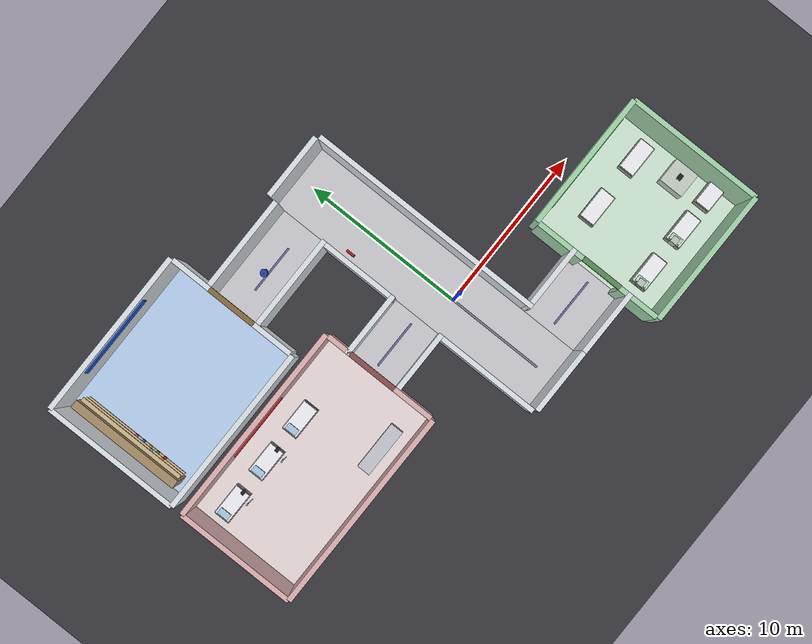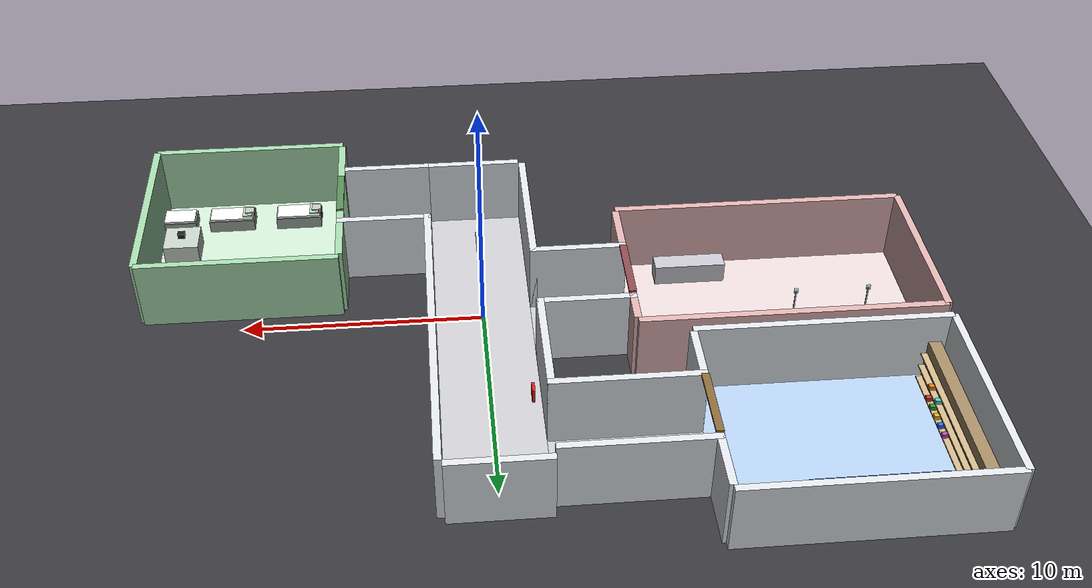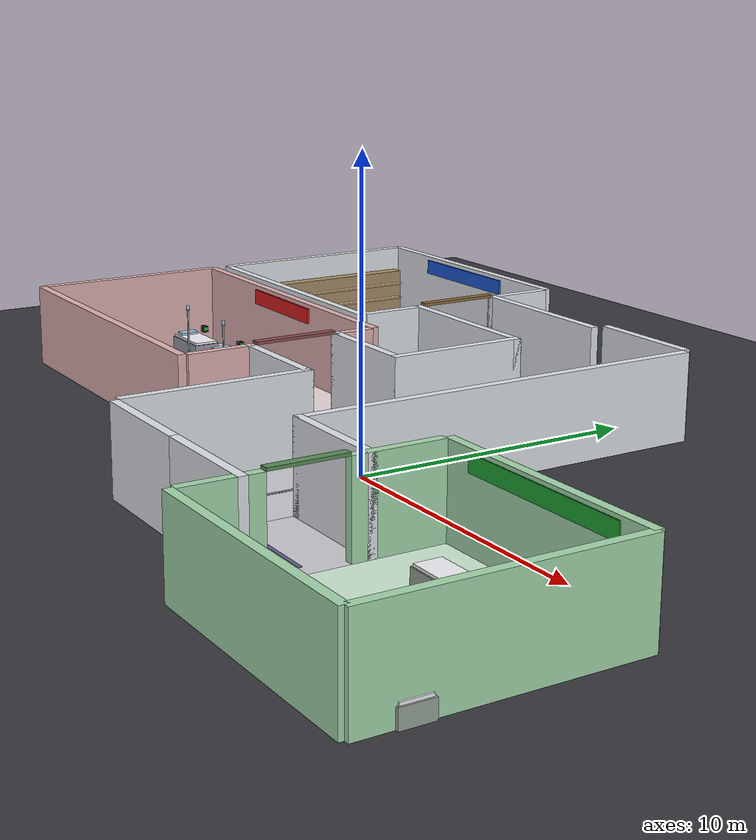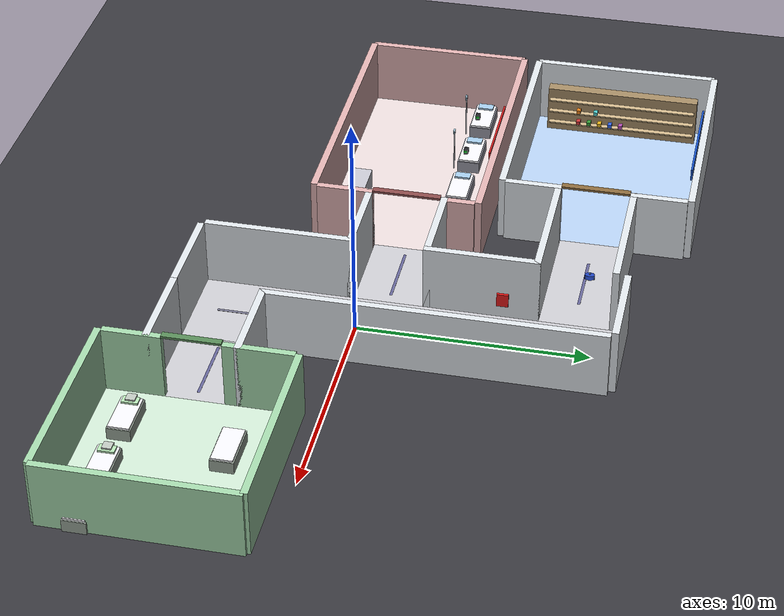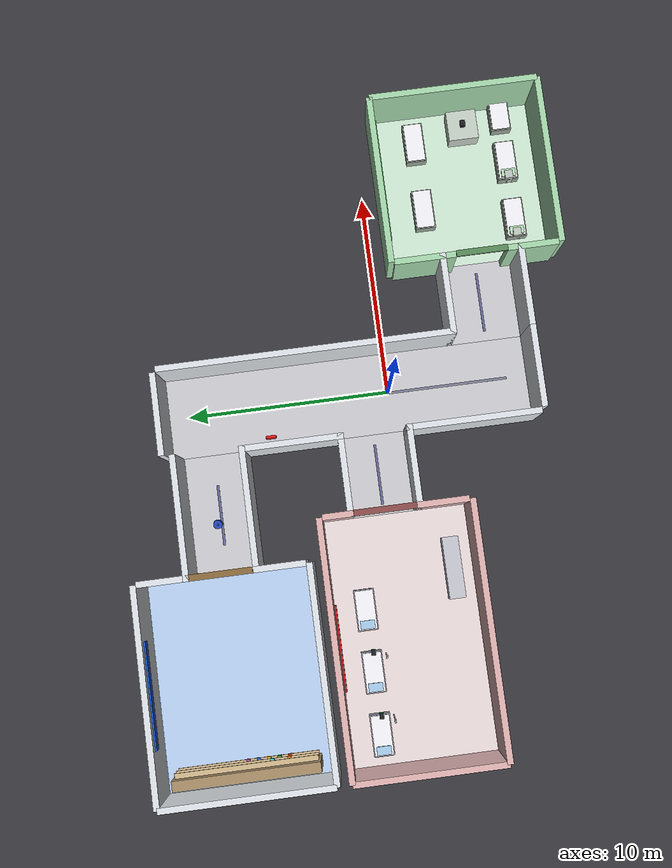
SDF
<sdf version="1.7">
 <world name="hospital_world">
  <physics name="ode" type="ode">
   <max_step_size>0.001</max_step_size>
   <real_time_factor>1</real_time_factor>
   <real_time_update_rate>1000</real_time_update_rate>
  </physics>
  <light name="sun" type="directional">
   <pose>0 4 20 0 -0 0</pose>
   <diffuse>0.9 0.9 0.88 1</diffuse>
   <specular>0.2 0.2 0.18 1</specular>
   <direction>-0.3 0.1 -0.9</direction>
   <attenuation><range>10</range></attenuation>
   <spot><inner_angle>0</inner_angle><outer_angle>0</outer_angle><falloff>0</falloff></spot>
  </light>
  <light name="amb" type="ambient">
   <direction>0 0 -1</direction>
   <attenuation><range>10</range></attenuation>
   <spot><inner_angle>0</inner_angle><outer_angle>0</outer_angle><falloff>0</falloff></spot>
   <color>0.40 0.40 0.42 1</color>
  </light>
  <light name="ph_light" type="point">
   <pose>-13 9 3.5 0 -0 0</pose>
   <diffuse>0.6 0.7 1 1</diffuse>
   <attenuation><range>12</range><linear>0.1</linear></attenuation>
   <direction>0 0 -1</direction>
   <spot><inner_angle>0</inner_angle><outer_angle>0</outer_angle><falloff>0</falloff></spot>
  </light>
  <light name="icu_light" type="point">
   <pose>-12 0.5 3.5 0 -0 0</pose>
   <diffuse>1 0.85 0.85 1</diffuse>
   <attenuation><range>14</range><linear>0.1</linear></attenuation>
   <direction>0 0 -1</direction>
   <spot><inner_angle>0</inner_angle><outer_angle>0</outer_angle><falloff>0</falloff></spot>
  </light>
  <light name="ward_light" type="point">
   <pose>10 -5 3.5 0 -0 0</pose>
   <diffuse>0.75 1 0.75 1</diffuse>
   <attenuation><range>12</range><linear>0.1</linear></attenuation>
   <direction>0 0 -1</direction>
   <spot><inner_angle>0</inner_angle><outer_angle>0</outer_angle><falloff>0</falloff></spot>
  </light>
  <model name="ground">
   <static>1</static>
   <link name="link">
    <collision name="c"><geometry><plane><normal>0 0 1</normal><size>80 60</size></plane></geometry></collision>
    <visual name="v">
     <geometry><plane><normal>0 0 1</normal><size>80 60</size></plane></geometry>
     <material><ambient>0.2 0.2 0.22 1</ambient><diffuse>0.22 0.22 0.24 1</diffuse></material>
    </visual>
   </link>
  </model>
  <model name="ph_floor">
   <static>1</static>
   <pose>-13 9 0.01 0 -0 0</pose>
   <link name="link">
    <visual name="v">
     <geometry><box><size>10 8 0.02</size></box></geometry>
     <material><ambient>0.72 0.82 0.95 1</ambient><diffuse>0.72 0.82 0.95 1</diffuse></material>
    </visual>
   </link>
  </model>
  <model name="ph_wn">
   <static>1</static>
   <pose>-13 13.15 1.5 0 -0 0</pose>
   <link name="link">
    <collision name="c"><geometry><box><size>10.3 0.3 3</size></box></geometry></collision>
    <visual name="v">
     <geometry><box><size>10.3 0.3 3</size></box></geometry>
     <material><ambient>0.88 0.9 0.92 1</ambient><diffuse>0.88 0.9 0.92 1</diffuse></material>
    </visual>
   </link>
  </model>
  <model name="ph_ws">
   <static>1</static>
   <pose>-13 4.85 1.5 0 -0 0</pose>
   <link name="link">
    <collision name="c"><geometry><box><size>10.3 0.3 3</size></box></geometry></collision>
    <visual name="v">
     <geometry><box><size>10.3 0.3 3</size></box></geometry>
     <material><ambient>0.88 0.9 0.92 1</ambient><diffuse>0.88 0.9 0.92 1</diffuse></material>
    </visual>
   </link>
  </model>
  <model name="ph_ww">
   <static>1</static>
   <pose>-18.15 9 1.5 0 -0 0</pose>
   <link name="link">
    <collision name="c"><geometry><box><size>0.3 8.3 3</size></box></geometry></collision>
    <visual name="v">
     <geometry><box><size>0.3 8.3 3</size></box></geometry>
     <material><ambient>0.88 0.9 0.92 1</ambient><diffuse>0.88 0.9 0.92 1</diffuse></material>
    </visual>
   </link>
  </model>
  <model name="ph_we_top">
   <static>1</static>
   <pose>-7.85 11.75 1.5 0 -0 0</pose>
   <link name="link">
    <collision name="c"><geometry><box><size>0.3 2.5 3</size></box></geometry></collision>
    <visual name="v">
     <geometry><box><size>0.3 2.5 3</size></box></geometry>
     <material><ambient>0.88 0.9 0.92 1</ambient><diffuse>0.88 0.9 0.92 1</diffuse></material>
    </visual>
   </link>
  </model>
  <model name="ph_we_bot">
   <static>1</static>
   <pose>-7.85 6.25 1.5 0 -0 0</pose>
   <link name="link">
    <collision name="c"><geometry><box><size>0.3 2.5 3</size></box></geometry></collision>
    <visual name="v">
     <geometry><box><size>0.3 2.5 3</size></box></geometry>
     <material><ambient>0.88 0.9 0.92 1</ambient><diffuse>0.88 0.9 0.92 1</diffuse></material>
    </visual>
   </link>
  </model>
  <model name="ph_door_top">
   <static>1</static>
   <pose>-7.85 9 3.05 0 -0 0</pose>
   <link name="link">
    <visual name="v">
     <geometry><box><size>0.3 3 0.1</size></box></geometry>
     <material><ambient>0.55 0.42 0.24 1</ambient><diffuse>0.55 0.42 0.24 1</diffuse></material>
    </visual>
   </link>
  </model>
  <model name="ph_sign">
   <static>1</static>
   <pose>-13 12.9 2.6 0 -0 0</pose>
   <link name="link">
    <visual name="v">
     <geometry><box><size>5 0.08 0.55</size></box></geometry>
     <material><ambient>0.1 0.35 0.85 1</ambient><diffuse>0.1 0.35 0.85 1</diffuse></material>
    </visual>
   </link>
  </model>
  <model name="ph_shelf_frame">
   <static>1</static>
   <pose>-17.3 9 1.1 0 -0 0</pose>
   <link name="link">
    <collision name="c"><geometry><box><size>0.5 7 2.2</size></box></geometry></collision>
    <visual name="v">
     <geometry><box><size>0.5 7 2.2</size></box></geometry>
     <material><ambient>0.65 0.55 0.4 1</ambient><diffuse>0.65 0.55 0.4 1</diffuse></material>
    </visual>
   </link>
  </model>
  <model name="ph_board1">
   <static>1</static>
   <pose>-17 9 0.5 0 -0 0</pose>
   <link name="link">
    <visual name="v">
     <geometry><box><size>0.4 6.8 0.06</size></box></geometry>
     <material><ambient>0.82 0.72 0.55 1</ambient><diffuse>0.82 0.72 0.55 1</diffuse></material>
    </visual>
   </link>
  </model>
  <model name="ph_board2">
   <static>1</static>
   <pose>-17 9 1.1 0 -0 0</pose>
   <link name="link">
    <visual name="v">
     <geometry><box><size>0.4 6.8 0.06</size></box></geometry>
     <material><ambient>0.82 0.72 0.55 1</ambient><diffuse>0.82 0.72 0.55 1</diffuse></material>
    </visual>
   </link>
  </model>
  <model name="ph_board3">
   <static>1</static>
   <pose>-17 9 1.7 0 -0 0</pose>
   <link name="link">
    <visual name="v">
     <geometry><box><size>0.4 6.8 0.06</size></box></geometry>
     <material><ambient>0.82 0.72 0.55 1</ambient><diffuse>0.82 0.72 0.55 1</diffuse></material>
    </visual>
   </link>
  </model>
  <model name="ph_box1">
   <static>1</static>
   <pose>-16.9 7 0.62 0 -0 0</pose>
   <link name="link">
    <visual name="v">
     <geometry><box><size>0.25 0.18 0.18</size></box></geometry>
     <material><ambient>0.8 0.2 0.2 1</ambient><diffuse>0.8 0.2 0.2 1</diffuse></material>
    </visual>
   </link>
  </model>
  <model name="ph_box2">
   <static>1</static>
   <pose>-16.9 7.5 0.62 0 -0 0</pose>
   <link name="link">
    <visual name="v">
     <geometry><box><size>0.25 0.18 0.18</size></box></geometry>
     <material><ambient>0.2 0.6 0.2 1</ambient><diffuse>0.2 0.6 0.2 1</diffuse></material>
    </visual>
   </link>
  </model>
  <model name="ph_box3">
   <static>1</static>
   <pose>-16.9 8 0.62 0 -0 0</pose>
   <link name="link">
    <visual name="v">
     <geometry><box><size>0.25 0.18 0.18</size></box></geometry>
     <material><ambient>0.9 0.7 0.1 1</ambient><diffuse>0.9 0.7 0.1 1</diffuse></material>
    </visual>
   </link>
  </model>
  <model name="ph_box4">
   <static>1</static>
   <pose>-16.9 8.5 0.62 0 -0 0</pose>
   <link name="link">
    <visual name="v">
     <geometry><box><size>0.25 0.18 0.18</size></box></geometry>
     <material><ambient>0.2 0.4 0.9 1</ambient><diffuse>0.2 0.4 0.9 1</diffuse></material>
    </visual>
   </link>
  </model>
  <model name="ph_box5">
   <static>1</static>
   <pose>-16.9 9 0.62 0 -0 0</pose>
   <link name="link">
    <visual name="v">
     <geometry><box><size>0.25 0.18 0.18</size></box></geometry>
     <material><ambient>0.7 0.3 0.7 1</ambient><diffuse>0.7 0.3 0.7 1</diffuse></material>
    </visual>
   </link>
  </model>
  <model name="ph_box6">
   <static>1</static>
   <pose>-16.9 7 1.22 0 -0 0</pose>
   <link name="link">
    <visual name="v">
     <geometry><box><size>0.25 0.18 0.18</size></box></geometry>
     <material><ambient>0.9 0.5 0.1 1</ambient><diffuse>0.9 0.5 0.1 1</diffuse></material>
    </visual>
   </link>
  </model>
  <model name="ph_box7">
   <static>1</static>
   <pose>-16.9 7.8 1.22 0 -0 0</pose>
   <link name="link">
    <visual name="v">
     <geometry><box><size>0.25 0.18 0.18</size></box></geometry>
     <material><ambient>0.3 0.8 0.8 1</ambient><diffuse>0.3 0.8 0.8 1</diffuse></material>
    </visual>
   </link>
  </model>
  <model name="phc_floor">
   <static>1</static>
   <pose>-5 9 0.01 0 -0 0</pose>
   <link name="link">
    <visual name="v">
     <geometry><box><size>6 3 0.02</size></box></geometry>
     <material><ambient>0.8 0.8 0.82 1</ambient><diffuse>0.8 0.8 0.82 1</diffuse></material>
    </visual>
   </link>
  </model>
  <model name="phc_wn">
   <static>1</static>
   <pose>-5 10.65 1.5 0 -0 0</pose>
   <link name="link">
    <collision name="c"><geometry><box><size>6 0.3 3</size></box></geometry></collision>
    <visual name="v">
     <geometry><box><size>6 0.3 3</size></box></geometry>
     <material><ambient>0.88 0.9 0.92 1</ambient><diffuse>0.88 0.9 0.92 1</diffuse></material>
    </visual>
   </link>
  </model>
  <model name="phc_ws">
   <static>1</static>
   <pose>-5 7.35 1.5 0 -0 0</pose>
   <link name="link">
    <collision name="c"><geometry><box><size>6 0.3 3</size></box></geometry></collision>
    <visual name="v">
     <geometry><box><size>6 0.3 3</size></box></geometry>
     <material><ambient>0.88 0.9 0.92 1</ambient><diffuse>0.88 0.9 0.92 1</diffuse></material>
    </visual>
   </link>
  </model>
  <model name="phc_arrow">
   <static>1</static>
   <pose>-5 9 0.025 0 -0 0</pose>
   <link name="link">
    <visual name="v">
     <geometry><box><size>3 0.12 0.01</size></box></geometry>
     <material><ambient>0.4 0.4 0.6 1</ambient><diffuse>0.4 0.4 0.6 1</diffuse></material>
    </visual>
   </link>
  </model>
  <model name="icu_floor">
   <static>1</static>
   <pose>-12 0.5 0.01 0 -0 0</pose>
   <link name="link">
    <visual name="v">
     <geometry><box><size>12 7 0.02</size></box></geometry>
     <material><ambient>0.92 0.86 0.86 1</ambient><diffuse>0.92 0.86 0.86 1</diffuse></material>
    </visual>
   </link>
  </model>
  <model name="icu_wn">
   <static>1</static>
   <pose>-12 4.15 1.5 0 -0 0</pose>
   <link name="link">
    <collision name="c"><geometry><box><size>12.3 0.3 3</size></box></geometry></collision>
    <visual name="v">
     <geometry><box><size>12.3 0.3 3</size></box></geometry>
     <material><ambient>0.88 0.7 0.7 1</ambient><diffuse>0.88 0.7 0.7 1</diffuse></material>
    </visual>
   </link>
  </model>
  <model name="icu_ws">
   <static>1</static>
   <pose>-12 -3.15 1.5 0 -0 0</pose>
   <link name="link">
    <collision name="c"><geometry><box><size>12.3 0.3 3</size></box></geometry></collision>
    <visual name="v">
     <geometry><box><size>12.3 0.3 3</size></box></geometry>
     <material><ambient>0.88 0.7 0.7 1</ambient><diffuse>0.88 0.7 0.7 1</diffuse></material>
    </visual>
   </link>
  </model>
  <model name="icu_ww">
   <static>1</static>
   <pose>-18.15 0.5 1.5 0 -0 0</pose>
   <link name="link">
    <collision name="c"><geometry><box><size>0.3 7.3 3</size></box></geometry></collision>
    <visual name="v">
     <geometry><box><size>0.3 7.3 3</size></box></geometry>
     <material><ambient>0.88 0.7 0.7 1</ambient><diffuse>0.88 0.7 0.7 1</diffuse></material>
    </visual>
   </link>
  </model>
  <model name="icu_we_top">
   <static>1</static>
   <pose>-5.85 3.25 1.5 0 -0 0</pose>
   <link name="link">
    <collision name="c"><geometry><box><size>0.3 1.5 3</size></box></geometry></collision>
    <visual name="v">
     <geometry><box><size>0.3 1.5 3</size></box></geometry>
     <material><ambient>0.88 0.7 0.7 1</ambient><diffuse>0.88 0.7 0.7 1</diffuse></material>
    </visual>
   </link>
  </model>
  <model name="icu_we_bot">
   <static>1</static>
   <pose>-5.85 -1.75 1.5 0 -0 0</pose>
   <link name="link">
    <collision name="c"><geometry><box><size>0.3 2.5 3</size></box></geometry></collision>
    <visual name="v">
     <geometry><box><size>0.3 2.5 3</size></box></geometry>
     <material><ambient>0.88 0.7 0.7 1</ambient><diffuse>0.88 0.7 0.7 1</diffuse></material>
    </visual>
   </link>
  </model>
  <model name="icu_door_top">
   <static>1</static>
   <pose>-5.85 1 3.05 0 -0 0</pose>
   <link name="link">
    <visual name="v">
     <geometry><box><size>0.3 3 0.1</size></box></geometry>
     <material><ambient>0.55 0.3 0.3 1</ambient><diffuse>0.55 0.3 0.3 1</diffuse></material>
    </visual>
   </link>
  </model>
  <model name="icu_sign">
   <static>1</static>
   <pose>-12 3.9 2.6 0 -0 0</pose>
   <link name="link">
    <visual name="v">
     <geometry><box><size>4 0.08 0.55</size></box></geometry>
     <material><ambient>0.85 0.12 0.12 1</ambient><diffuse>0.85 0.12 0.12 1</diffuse></material>
    </visual>
   </link>
  </model>
  <model name="icu_bf1">
   <static>1</static>
   <pose>-16.5 2.5 0.28 0 -0 0</pose>
   <link name="link">
    <collision name="c"><geometry><box><size>2 1 0.55</size></box></geometry></collision>
    <visual name="v">
     <geometry><box><size>2 1 0.55</size></box></geometry>
     <material><ambient>0.6 0.6 0.65 1</ambient><diffuse>0.6 0.6 0.65 1</diffuse></material>
    </visual>
   </link>
  </model>
  <model name="icu_bm1">
   <static>1</static>
   <pose>-16.5 2.5 0.58 0 -0 0</pose>
   <link name="link">
    <visual name="v">
     <geometry><box><size>1.9 0.9 0.12</size></box></geometry>
     <material><ambient>0.96 0.96 0.98 1</ambient><diffuse>0.96 0.96 0.98 1</diffuse></material>
    </visual>
   </link>
  </model>
  <model name="icu_bp1">
   <static>1</static>
   <pose>-17.2 2.5 0.68 0 -0 0</pose>
   <link name="link">
    <visual name="v">
     <geometry><box><size>0.4 0.7 0.1</size></box></geometry>
     <material><ambient>0.65 0.8 0.92 1</ambient><diffuse>0.65 0.8 0.92 1</diffuse></material>
    </visual>
   </link>
  </model>
  <model name="icu_bf2">
   <static>1</static>
   <pose>-13.5 2.5 0.28 0 -0 0</pose>
   <link name="link">
    <collision name="c"><geometry><box><size>2 1 0.55</size></box></geometry></collision>
    <visual name="v">
     <geometry><box><size>2 1 0.55</size></box></geometry>
     <material><ambient>0.6 0.6 0.65 1</ambient><diffuse>0.6 0.6 0.65 1</diffuse></material>
    </visual>
   </link>
  </model>
  <model name="icu_bm2">
   <static>1</static>
   <pose>-13.5 2.5 0.58 0 -0 0</pose>
   <link name="link">
    <visual name="v">
     <geometry><box><size>1.9 0.9 0.12</size></box></geometry>
     <material><ambient>0.96 0.96 0.98 1</ambient><diffuse>0.96 0.96 0.98 1</diffuse></material>
    </visual>
   </link>
  </model>
  <model name="icu_bp2">
   <static>1</static>
   <pose>-14.2 2.5 0.68 0 -0 0</pose>
   <link name="link">
    <visual name="v">
     <geometry><box><size>0.4 0.7 0.1</size></box></geometry>
     <material><ambient>0.65 0.8 0.92 1</ambient><diffuse>0.65 0.8 0.92 1</diffuse></material>
    </visual>
   </link>
  </model>
  <model name="icu_bf3">
   <static>1</static>
   <pose>-10.5 2.5 0.28 0 -0 0</pose>
   <link name="link">
    <collision name="c"><geometry><box><size>2 1 0.55</size></box></geometry></collision>
    <visual name="v">
     <geometry><box><size>2 1 0.55</size></box></geometry>
     <material><ambient>0.6 0.6 0.65 1</ambient><diffuse>0.6 0.6 0.65 1</diffuse></material>
    </visual>
   </link>
  </model>
  <model name="icu_bm3">
   <static>1</static>
   <pose>-10.5 2.5 0.58 0 -0 0</pose>
   <link name="link">
    <visual name="v">
     <geometry><box><size>1.9 0.9 0.12</size></box></geometry>
     <material><ambient>0.96 0.96 0.98 1</ambient><diffuse>0.96 0.96 0.98 1</diffuse></material>
    </visual>
   </link>
  </model>
  <model name="icu_bp3">
   <static>1</static>
   <pose>-11.2 2.5 0.68 0 -0 0</pose>
   <link name="link">
    <visual name="v">
     <geometry><box><size>0.4 0.7 0.1</size></box></geometry>
     <material><ambient>0.65 0.8 0.92 1</ambient><diffuse>0.65 0.8 0.92 1</diffuse></material>
    </visual>
   </link>
  </model>
  <model name="icu_iv1">
   <static>1</static>
   <pose>-15.7 1.8 1 0 -0 0</pose>
   <link name="link">
    <visual name="v">
     <geometry><box><size>0.05 0.05 2</size></box></geometry>
     <material><ambient>0.75 0.75 0.78 1</ambient><diffuse>0.75 0.75 0.78 1</diffuse></material>
    </visual>
   </link>
  </model>
  <model name="icu_iv1_bag">
   <static>1</static>
   <pose>-15.7 1.8 2.05 0 -0 0</pose>
   <link name="link">
    <visual name="v">
     <geometry><box><size>0.15 0.08 0.2</size></box></geometry>
     <material><ambient>0.7 0.9 1 0.8</ambient><diffuse>0.7 0.9 1 0.8</diffuse></material>
    </visual>
   </link>
  </model>
  <model name="icu_iv2">
   <static>1</static>
   <pose>-12.7 1.8 1 0 -0 0</pose>
   <link name="link">
    <visual name="v">
     <geometry><box><size>0.05 0.05 2</size></box></geometry>
     <material><ambient>0.75 0.75 0.78 1</ambient><diffuse>0.75 0.75 0.78 1</diffuse></material>
    </visual>
   </link>
  </model>
  <model name="icu_iv2_bag">
   <static>1</static>
   <pose>-12.7 1.8 2.05 0 -0 0</pose>
   <link name="link">
    <visual name="v">
     <geometry><box><size>0.15 0.08 0.2</size></box></geometry>
     <material><ambient>0.7 0.9 1 0.8</ambient><diffuse>0.7 0.9 1 0.8</diffuse></material>
    </visual>
   </link>
  </model>
  <model name="icu_mon1">
   <static>1</static>
   <pose>-15.5 2.4 1.2 0 -0 0</pose>
   <link name="link">
    <visual name="v">
     <geometry><box><size>0.28 0.2 0.22</size></box></geometry>
     <material><ambient>0.12 0.12 0.14 1</ambient><diffuse>0.12 0.12 0.14 1</diffuse></material>
    </visual>
   </link>
  </model>
  <model name="icu_mon1_scr">
   <static>1</static>
   <pose>-15.36 2.4 1.22 0 -0 0</pose>
   <link name="link">
    <visual name="v">
     <geometry><box><size>0.02 0.16 0.14</size></box></geometry>
     <material><ambient>0.1 0.8 0.2 1</ambient><diffuse>0.1 0.8 0.2 1</diffuse></material>
    </visual>
   </link>
  </model>
  <model name="icu_mon2">
   <static>1</static>
   <pose>-12.5 2.4 1.2 0 -0 0</pose>
   <link name="link">
    <visual name="v">
     <geometry><box><size>0.28 0.2 0.22</size></box></geometry>
     <material><ambient>0.12 0.12 0.14 1</ambient><diffuse>0.12 0.12 0.14 1</diffuse></material>
    </visual>
   </link>
  </model>
  <model name="icu_mon2_scr">
   <static>1</static>
   <pose>-12.36 2.4 1.22 0 -0 0</pose>
   <link name="link">
    <visual name="v">
     <geometry><box><size>0.02 0.16 0.14</size></box></geometry>
     <material><ambient>0.1 0.8 0.2 1</ambient><diffuse>0.1 0.8 0.2 1</diffuse></material>
    </visual>
   </link>
  </model>
  <model name="icu_ns">
   <static>1</static>
   <pose>-9 -2 0.45 0 -0 0</pose>
   <link name="link">
    <collision name="c"><geometry><box><size>3 0.8 0.9</size></box></geometry></collision>
    <visual name="v">
     <geometry><box><size>3 0.8 0.9</size></box></geometry>
     <material><ambient>0.78 0.78 0.82 1</ambient><diffuse>0.78 0.78 0.82 1</diffuse></material>
    </visual>
   </link>
  </model>
  <model name="icuc_floor">
   <static>1</static>
   <pose>-4 1 0.01 0 -0 0</pose>
   <link name="link">
    <visual name="v">
     <geometry><box><size>4 3 0.02</size></box></geometry>
     <material><ambient>0.8 0.8 0.82 1</ambient><diffuse>0.8 0.8 0.82 1</diffuse></material>
    </visual>
   </link>
  </model>
  <model name="icuc_wn">
   <static>1</static>
   <pose>-4 2.65 1.5 0 -0 0</pose>
   <link name="link">
    <collision name="c"><geometry><box><size>4 0.3 3</size></box></geometry></collision>
    <visual name="v">
     <geometry><box><size>4 0.3 3</size></box></geometry>
     <material><ambient>0.88 0.9 0.92 1</ambient><diffuse>0.88 0.9 0.92 1</diffuse></material>
    </visual>
   </link>
  </model>
  <model name="icuc_ws">
   <static>1</static>
   <pose>-4 -0.65 1.5 0 -0 0</pose>
   <link name="link">
    <collision name="c"><geometry><box><size>4 0.3 3</size></box></geometry></collision>
    <visual name="v">
     <geometry><box><size>4 0.3 3</size></box></geometry>
     <material><ambient>0.88 0.9 0.92 1</ambient><diffuse>0.88 0.9 0.92 1</diffuse></material>
    </visual>
   </link>
  </model>
  <model name="icuc_arrow">
   <static>1</static>
   <pose>-4 1 0.025 0 -0 0</pose>
   <link name="link">
    <visual name="v">
     <geometry><box><size>3 0.12 0.01</size></box></geometry>
     <material><ambient>0.4 0.4 0.6 1</ambient><diffuse>0.4 0.4 0.6 1</diffuse></material>
    </visual>
   </link>
  </model>
  <model name="vm_floor">
   <static>1</static>
   <pose>0 2 0.01 0 -0 0</pose>
   <link name="link">
    <visual name="v">
     <geometry><box><size>4 18 0.02</size></box></geometry>
     <material><ambient>0.8 0.8 0.82 1</ambient><diffuse>0.8 0.8 0.82 1</diffuse></material>
    </visual>
   </link>
  </model>
  <model name="vm_wn">
   <static>1</static>
   <pose>0 11.15 1.5 0 -0 0</pose>
   <link name="link">
    <collision name="c"><geometry><box><size>4 0.3 3</size></box></geometry></collision>
    <visual name="v">
     <geometry><box><size>4 0.3 3</size></box></geometry>
     <material><ambient>0.88 0.9 0.92 1</ambient><diffuse>0.88 0.9 0.92 1</diffuse></material>
    </visual>
   </link>
  </model>
  <model name="vm_ws">
   <static>1</static>
   <pose>0 -7.15 1.5 0 -0 0</pose>
   <link name="link">
    <collision name="c"><geometry><box><size>4 0.3 3</size></box></geometry></collision>
    <visual name="v">
     <geometry><box><size>4 0.3 3</size></box></geometry>
     <material><ambient>0.88 0.9 0.92 1</ambient><diffuse>0.88 0.9 0.92 1</diffuse></material>
    </visual>
   </link>
  </model>
  <model name="vm_ww_mid">
   <static>1</static>
   <pose>-2.15 5 1.5 0 -0 0</pose>
   <link name="link">
    <collision name="c"><geometry><box><size>0.3 5 3</size></box></geometry></collision>
    <visual name="v">
     <geometry><box><size>0.3 5 3</size></box></geometry>
     <material><ambient>0.88 0.9 0.92 1</ambient><diffuse>0.88 0.9 0.92 1</diffuse></material>
    </visual>
   </link>
  </model>
  <model name="vm_ww_bot">
   <static>1</static>
   <pose>-2.15 -3.75 1.5 0 -0 0</pose>
   <link name="link">
    <collision name="c"><geometry><box><size>0.3 6.5 3</size></box></geometry></collision>
    <visual name="v">
     <geometry><box><size>0.3 6.5 3</size></box></geometry>
     <material><ambient>0.88 0.9 0.92 1</ambient><diffuse>0.88 0.9 0.92 1</diffuse></material>
    </visual>
   </link>
  </model>
  <model name="vm_we_top">
   <static>1</static>
   <pose>2.15 3.75 1.5 0 -0 0</pose>
   <link name="link">
    <collision name="c"><geometry><box><size>0.3 14.5 3</size></box></geometry></collision>
    <visual name="v">
     <geometry><box><size>0.3 14.5 3</size></box></geometry>
     <material><ambient>0.88 0.9 0.92 1</ambient><diffuse>0.88 0.9 0.92 1</diffuse></material>
    </visual>
   </link>
  </model>
  <model name="vm_line">
   <static>1</static>
   <pose>0 2 0.025 0 -0 1.5708</pose>
   <link name="link">
    <visual name="v">
     <geometry><box><size>16 0.12 0.01</size></box></geometry>
     <material><ambient>0.5 0.5 0.6 1</ambient><diffuse>0.5 0.5 0.6 1</diffuse></material>
    </visual>
   </link>
  </model>
  <model name="vm_emerg">
   <static>1</static>
   <pose>-1.6 6 1.2 0 -0 0</pose>
   <link name="link">
    <visual name="v">
     <geometry><box><size>0.12 0.5 0.6</size></box></geometry>
     <material><ambient>0.9 0.1 0.1 1</ambient><diffuse>0.9 0.1 0.1 1</diffuse></material>
    </visual>
   </link>
  </model>
  <model name="wc_floor">
   <static>1</static>
   <pose>4 -5.25 0.01 0 -0 0</pose>
   <link name="link">
    <visual name="v">
     <geometry><box><size>4 3.5 0.02</size></box></geometry>
     <material><ambient>0.8 0.8 0.82 1</ambient><diffuse>0.8 0.8 0.82 1</diffuse></material>
    </visual>
   </link>
  </model>
  <model name="wc_wn">
   <static>1</static>
   <pose>4 -3.35 1.5 0 -0 0</pose>
   <link name="link">
    <collision name="c"><geometry><box><size>4 0.3 3</size></box></geometry></collision>
    <visual name="v">
     <geometry><box><size>4 0.3 3</size></box></geometry>
     <material><ambient>0.88 0.9 0.92 1</ambient><diffuse>0.88 0.9 0.92 1</diffuse></material>
    </visual>
   </link>
  </model>
  <model name="wc_ws">
   <static>1</static>
   <pose>4 -7.15 1.5 0 -0 0</pose>
   <link name="link">
    <collision name="c"><geometry><box><size>4 0.3 3</size></box></geometry></collision>
    <visual name="v">
     <geometry><box><size>4 0.3 3</size></box></geometry>
     <material><ambient>0.88 0.9 0.92 1</ambient><diffuse>0.88 0.9 0.92 1</diffuse></material>
    </visual>
   </link>
  </model>
  <model name="wc_arrow">
   <static>1</static>
   <pose>4 -5.25 0.025 0 -0 0</pose>
   <link name="link">
    <visual name="v">
     <geometry><box><size>3 0.12 0.01</size></box></geometry>
     <material><ambient>0.4 0.4 0.6 1</ambient><diffuse>0.4 0.4 0.6 1</diffuse></material>
    </visual>
   </link>
  </model>
  <model name="gw_floor">
   <static>1</static>
   <pose>10 -5 0.01 0 -0 0</pose>
   <link name="link">
    <visual name="v">
     <geometry><box><size>8 8 0.02</size></box></geometry>
     <material><ambient>0.82 0.92 0.84 1</ambient><diffuse>0.82 0.92 0.84 1</diffuse></material>
    </visual>
   </link>
  </model>
  <model name="gw_wn">
   <static>1</static>
   <pose>10 -0.85 1.5 0 -0 0</pose>
   <link name="link">
    <collision name="c"><geometry><box><size>8.3 0.3 3</size></box></geometry></collision>
    <visual name="v">
     <geometry><box><size>8.3 0.3 3</size></box></geometry>
     <material><ambient>0.65 0.85 0.68 1</ambient><diffuse>0.65 0.85 0.68 1</diffuse></material>
    </visual>
   </link>
  </model>
  <model name="gw_ws">
   <static>1</static>
   <pose>10 -9.15 1.5 0 -0 0</pose>
   <link name="link">
    <collision name="c"><geometry><box><size>8.3 0.3 3</size></box></geometry></collision>
    <visual name="v">
     <geometry><box><size>8.3 0.3 3</size></box></geometry>
     <material><ambient>0.65 0.85 0.68 1</ambient><diffuse>0.65 0.85 0.68 1</diffuse></material>
    </visual>
   </link>
  </model>
  <model name="gw_we">
   <static>1</static>
   <pose>14.15 -5 1.5 0 -0 0</pose>
   <link name="link">
    <collision name="c"><geometry><box><size>0.3 8.3 3</size></box></geometry></collision>
    <visual name="v">
     <geometry><box><size>0.3 8.3 3</size></box></geometry>
     <material><ambient>0.65 0.85 0.68 1</ambient><diffuse>0.65 0.85 0.68 1</diffuse></material>
    </visual>
   </link>
  </model>
  <model name="gw_ww_top">
   <static>1</static>
   <pose>5.85 -2.5 1.5 0 -0 0</pose>
   <link name="link">
    <collision name="c"><geometry><box><size>0.3 3 3</size></box></geometry></collision>
    <visual name="v">
     <geometry><box><size>0.3 3 3</size></box></geometry>
     <material><ambient>0.65 0.85 0.68 1</ambient><diffuse>0.65 0.85 0.68 1</diffuse></material>
    </visual>
   </link>
  </model>
  <model name="gw_ww_bot">
   <static>1</static>
   <pose>5.85 -7.75 1.5 0 -0 0</pose>
   <link name="link">
    <collision name="c"><geometry><box><size>0.3 2.5 3</size></box></geometry></collision>
    <visual name="v">
     <geometry><box><size>0.3 2.5 3</size></box></geometry>
     <material><ambient>0.65 0.85 0.68 1</ambient><diffuse>0.65 0.85 0.68 1</diffuse></material>
    </visual>
   </link>
  </model>
  <model name="gw_door_top">
   <static>1</static>
   <pose>5.85 -5.25 3.05 0 -0 0</pose>
   <link name="link">
    <visual name="v">
     <geometry><box><size>0.3 2.5 0.1</size></box></geometry>
     <material><ambient>0.35 0.55 0.35 1</ambient><diffuse>0.35 0.55 0.35 1</diffuse></material>
    </visual>
   </link>
  </model>
  <model name="gw_sign">
   <static>1</static>
   <pose>10 -1 2.6 0 -0 0</pose>
   <link name="link">
    <visual name="v">
     <geometry><box><size>6 0.08 0.55</size></box></geometry>
     <material><ambient>0.12 0.65 0.2 1</ambient><diffuse>0.12 0.65 0.2 1</diffuse></material>
    </visual>
   </link>
  </model>
  <model name="gw_bf1">
   <static>1</static>
   <pose>8 -7.5 0.28 0 -0 0</pose>
   <link name="link">
    <collision name="c"><geometry><box><size>2 1 0.55</size></box></geometry></collision>
    <visual name="v">
     <geometry><box><size>2 1 0.55</size></box></geometry>
     <material><ambient>0.6 0.65 0.6 1</ambient><diffuse>0.6 0.65 0.6 1</diffuse></material>
    </visual>
   </link>
  </model>
  <model name="gw_bm1">
   <static>1</static>
   <pose>8 -7.5 0.58 0 -0 0</pose>
   <link name="link">
    <visual name="v">
     <geometry><box><size>1.9 0.9 0.12</size></box></geometry>
     <material><ambient>0.96 0.96 0.98 1</ambient><diffuse>0.96 0.96 0.98 1</diffuse></material>
    </visual>
   </link>
  </model>
  <model name="gw_bpil1">
   <static>1</static>
   <pose>7.3 -7.5 0.68 0 -0 0</pose>
   <link name="link">
    <visual name="v">
     <geometry><box><size>0.4 0.7 0.1</size></box></geometry>
     <material><ambient>0.72 0.9 0.72 1</ambient><diffuse>0.72 0.9 0.72 1</diffuse></material>
    </visual>
   </link>
  </model>
  <model name="gw_bf2">
   <static>1</static>
   <pose>11 -7.5 0.28 0 -0 0</pose>
   <link name="link">
    <collision name="c"><geometry><box><size>2 1 0.55</size></box></geometry></collision>
    <visual name="v">
     <geometry><box><size>2 1 0.55</size></box></geometry>
     <material><ambient>0.6 0.65 0.6 1</ambient><diffuse>0.6 0.65 0.6 1</diffuse></material>
    </visual>
   </link>
  </model>
  <model name="gw_bm2">
   <static>1</static>
   <pose>11 -7.5 0.58 0 -0 0</pose>
   <link name="link">
    <visual name="v">
     <geometry><box><size>1.9 0.9 0.12</size></box></geometry>
     <material><ambient>0.96 0.96 0.98 1</ambient><diffuse>0.96 0.96 0.98 1</diffuse></material>
    </visual>
   </link>
  </model>
  <model name="gw_bpil2">
   <static>1</static>
   <pose>10.3 -7.5 0.68 0 -0 0</pose>
   <link name="link">
    <visual name="v">
     <geometry><box><size>0.4 0.7 0.1</size></box></geometry>
     <material><ambient>0.72 0.9 0.72 1</ambient><diffuse>0.72 0.9 0.72 1</diffuse></material>
    </visual>
   </link>
  </model>
  <model name="gw_bf3">
   <static>1</static>
   <pose>13.5 -7.5 0.28 0 -0 0</pose>
   <link name="link">
    <collision name="c"><geometry><box><size>1.8 1 0.55</size></box></geometry></collision>
    <visual name="v">
     <geometry><box><size>1.8 1 0.55</size></box></geometry>
     <material><ambient>0.6 0.65 0.6 1</ambient><diffuse>0.6 0.65 0.6 1</diffuse></material>
    </visual>
   </link>
  </model>
  <model name="gw_bm3">
   <static>1</static>
   <pose>13.5 -7.5 0.58 0 -0 0</pose>
   <link name="link">
    <visual name="v">
     <geometry><box><size>1.7 0.9 0.12</size></box></geometry>
     <material><ambient>0.96 0.96 0.98 1</ambient><diffuse>0.96 0.96 0.98 1</diffuse></material>
    </visual>
   </link>
  </model>
  <model name="gw_bf4">
   <static>1</static>
   <pose>9 -3 0.28 0 -0 0</pose>
   <link name="link">
    <collision name="c"><geometry><box><size>2 1 0.55</size></box></geometry></collision>
    <visual name="v">
     <geometry><box><size>2 1 0.55</size></box></geometry>
     <material><ambient>0.6 0.65 0.6 1</ambient><diffuse>0.6 0.65 0.6 1</diffuse></material>
    </visual>
   </link>
  </model>
  <model name="gw_bm4">
   <static>1</static>
   <pose>9 -3 0.58 0 -0 0</pose>
   <link name="link">
    <visual name="v">
     <geometry><box><size>1.9 0.9 0.12</size></box></geometry>
     <material><ambient>0.96 0.96 0.98 1</ambient><diffuse>0.96 0.96 0.98 1</diffuse></material>
    </visual>
   </link>
  </model>
  <model name="gw_bf5">
   <static>1</static>
   <pose>12.5 -3 0.28 0 -0 0</pose>
   <link name="link">
    <collision name="c"><geometry><box><size>2 1 0.55</size></box></geometry></collision>
    <visual name="v">
     <geometry><box><size>2 1 0.55</size></box></geometry>
     <material><ambient>0.6 0.65 0.6 1</ambient><diffuse>0.6 0.65 0.6 1</diffuse></material>
    </visual>
   </link>
  </model>
  <model name="gw_bm5">
   <static>1</static>
   <pose>12.5 -3 0.58 0 -0 0</pose>
   <link name="link">
    <visual name="v">
     <geometry><box><size>1.9 0.9 0.12</size></box></geometry>
     <material><ambient>0.96 0.96 0.98 1</ambient><diffuse>0.96 0.96 0.98 1</diffuse></material>
    </visual>
   </link>
  </model>
  <model name="gw_bt1">
   <static>1</static>
   <pose>7.2 -7.5 0.4 0 -0 0</pose>
   <link name="link">
    <visual name="v">
     <geometry><box><size>0.4 0.4 0.8</size></box></geometry>
     <material><ambient>0.75 0.78 0.75 1</ambient><diffuse>0.75 0.78 0.75 1</diffuse></material>
    </visual>
   </link>
  </model>
  <model name="gw_bt2">
   <static>1</static>
   <pose>10.2 -7.5 0.4 0 -0 0</pose>
   <link name="link">
    <visual name="v">
     <geometry><box><size>0.4 0.4 0.8</size></box></geometry>
     <material><ambient>0.75 0.78 0.75 1</ambient><diffuse>0.75 0.78 0.75 1</diffuse></material>
    </visual>
   </link>
  </model>
  <model name="gw_ns">
   <static>1</static>
   <pose>13 -5.5 0.45 0 -0 0</pose>
   <link name="link">
    <collision name="c"><geometry><box><size>1.5 1.5 0.9</size></box></geometry></collision>
    <visual name="v">
     <geometry><box><size>1.5 1.5 0.9</size></box></geometry>
     <material><ambient>0.78 0.82 0.78 1</ambient><diffuse>0.78 0.82 0.78 1</diffuse></material>
    </visual>
   </link>
  </model>
  <model name="gw_pc">
   <static>1</static>
   <pose>13 -5.5 1.05 0 -0 0</pose>
   <link name="link">
    <visual name="v">
     <geometry><box><size>0.3 0.25 0.22</size></box></geometry>
     <material><ambient>0.12 0.12 0.14 1</ambient><diffuse>0.12 0.12 0.14 1</diffuse></material>
    </visual>
   </link>
  </model>
  <model name="gw_win">
   <static>1</static>
   <pose>14.05 -5 1.5 0 -0 0</pose>
   <link name="link">
    <visual name="v">
     <geometry><box><size>0.05 3.5 1.4</size></box></geometry>
     <material><ambient>0.75 0.88 0.95 1</ambient><diffuse>0.75 0.88 0.95 1</diffuse></material>
    </visual>
   </link>
  </model>
  <gravity>0 0 -9.8</gravity>
  <magnetic_field>6e-06 2.3e-05 -4.2e-05</magnetic_field>
  <atmosphere type="adiabatic"/>
  <scene><ambient>0.4 0.4 0.4 1</ambient><background>0.7 0.7 0.7 1</background><shadows>1</shadows></scene>
  <audio><device>default</device></audio>
  <spherical_coordinates>
   <surface_model>EARTH_WGS84</surface_model>
   <latitude_deg>0</latitude_deg>
   <longitude_deg>0</longitude_deg>
   <elevation>0</elevation>
   <heading_deg>0</heading_deg>
  </spherical_coordinates>
  <model name="hospital_robot">
   <link name="base_footprint">
    <inertial>
     <pose>0.005806 0 0.097419 0 -0 0</pose>
     <mass>3.1</mass>
     <inertia>
      <ixx>0.0512194</ixx>
      <ixy>0</ixy>
      <ixz>0.00139355</ixz>
      <iyy>0.0543548</iyy>
      <iyz>0</iyz>
      <izz>0.0797355</izz>
     </inertia>
    </inertial>
    <collision name="base_footprint_fixed_joint_lump__base_link_collision">
     <pose>0 0 0.1 0 -0 0</pose>
     <geometry><cylinder><length>0.18</length><radius>0.22</radius></cylinder></geometry>
    </collision>
    <collision name="base_footprint_fixed_joint_lump__caster_wheel_collision_1">
     <pose>0.18 0 0.02 0 -0 0</pose>
     <geometry><sphere><radius>0.04</radius></sphere></geometry>
    </collision>
    <visual name="base_footprint_fixed_joint_lump__base_link_visual">
     <pose>0 0 0.1 0 -0 0</pose>
     <geometry><cylinder><length>0.18</length><radius>0.22</radius></cylinder></geometry>
     <material>
      <script><name>Gazebo/Blue</name><uri>file://media/materials/scripts/gazebo.material</uri></script>
     </material>
    </visual>
    <visual name="base_footprint_fixed_joint_lump__caster_wheel_visual_1">
     <pose>0.18 0 0.02 0 -0 0</pose>
     <geometry><sphere><radius>0.04</radius></sphere></geometry>
    </visual>
    <visual name="base_footprint_fixed_joint_lump__lidar_visual_2">
     <pose>0 0 0.22 0 -0 0</pose>
     <geometry><cylinder><length>0.03</length><radius>0.04</radius></cylinder></geometry>
    </visual>
    <visual name="base_footprint_fixed_joint_lump__top_light_visual_3">
     <pose>0 0 0.22 0 -0 0</pose>
     <geometry><sphere><radius>0.04</radius></sphere></geometry>
    </visual>
   </link>
   <joint name="left_wheel_joint" type="revolute">
    <pose relative_to="base_footprint">0 0.2 0.04 -1.5708 0 0</pose>
    <parent>base_footprint</parent>
    <child>left_wheel</child>
    <axis>
     <xyz>0 0 1</xyz>
     <limit><lower>-1e+16</lower><upper>1e+16</upper></limit>
     <dynamics><spring_reference>0</spring_reference><spring_stiffness>0</spring_stiffness></dynamics>
    </axis>
   </joint>
   <link name="left_wheel">
    <pose relative_to="left_wheel_joint">0 0 0 0 -0 0</pose>
    <inertial>
     <mass>0.3</mass>
     <inertia><ixx>0.001</ixx><ixy>0</ixy><ixz>0</ixz><iyy>0.001</iyy><iyz>0</iyz><izz>0.001</izz></inertia>
    </inertial>
    <collision name="left_wheel_collision">
     <geometry><cylinder><length>0.04</length><radius>0.08</radius></cylinder></geometry>
    </collision>
    <visual name="left_wheel_visual">
     <geometry><cylinder><length>0.04</length><radius>0.08</radius></cylinder></geometry>
     <material>
      <script><name>Gazebo/DarkGray</name><uri>file://media/materials/scripts/gazebo.material</uri></script>
     </material>
    </visual>
   </link>
   <joint name="right_wheel_joint" type="revolute">
    <pose relative_to="base_footprint">0 -0.2 0.04 -1.5708 0 0</pose>
    <parent>base_footprint</parent>
    <child>right_wheel</child>
    <axis>
     <xyz>0 0 1</xyz>
     <limit><lower>-1e+16</lower><upper>1e+16</upper></limit>
     <dynamics><spring_reference>0</spring_reference><spring_stiffness>0</spring_stiffness></dynamics>
    </axis>
   </joint>
   <link name="right_wheel">
    <pose relative_to="right_wheel_joint">0 0 0 0 -0 0</pose>
    <inertial>
     <mass>0.3</mass>
     <inertia><ixx>0.001</ixx><ixy>0</ixy><ixz>0</ixz><iyy>0.001</iyy><iyz>0</iyz><izz>0.001</izz></inertia>
    </inertial>
    <collision name="right_wheel_collision">
     <geometry><cylinder><length>0.04</length><radius>0.08</radius></cylinder></geometry>
    </collision>
    <visual name="right_wheel_visual">
     <geometry><cylinder><length>0.04</length><radius>0.08</radius></cylinder></geometry>
     <material>
      <script><name>Gazebo/DarkGray</name><uri>file://media/materials/scripts/gazebo.material</uri></script>
     </material>
    </visual>
   </link>
   <static>0</static>
   <plugin name="differential_drive_controller" filename="libgazebo_ros_diff_drive.so">
    <update_rate>30</update_rate>
    <left_joint>left_wheel_joint</left_joint>
    <right_joint>right_wheel_joint</right_joint>
    <wheel_separation>0.4</wheel_separation>
    <wheel_diameter>0.16</wheel_diameter>
    <max_wheel_torque>20</max_wheel_torque>
    <max_wheel_acceleration>1.0</max_wheel_acceleration>
    <command_topic>cmd_vel</command_topic>
    <publish_odom>1</publish_odom>
    <publish_odom_tf>1</publish_odom_tf>
    <publish_wheel_tf>1</publish_wheel_tf>
    <odometry_topic>odom</odometry_topic>
    <odometry_frame>odom</odometry_frame>
    <robot_base_frame>base_footprint</robot_base_frame>
   </plugin>
   <pose>-5.40584 9.1972 0.041082 -0 -0.233066 0.031202</pose>
  </model>
 </world>
</sdf>
